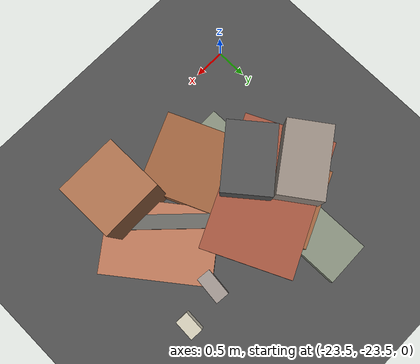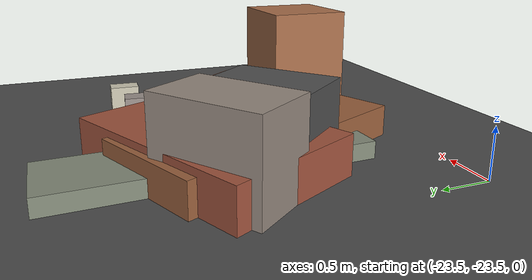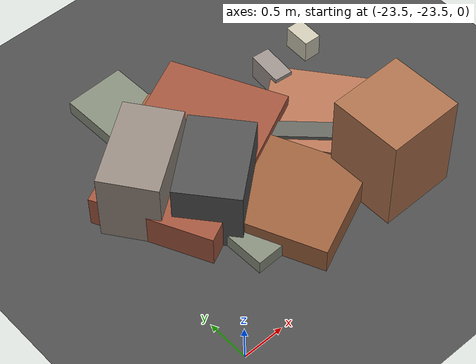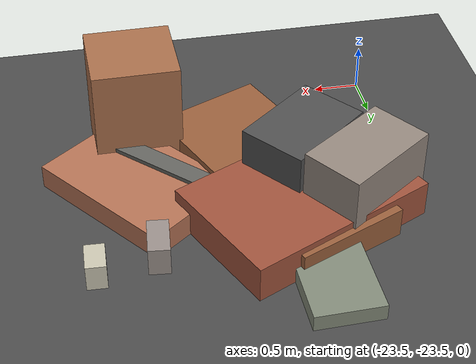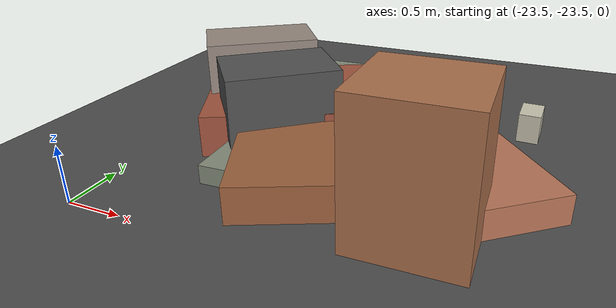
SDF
<sdf version="1.6">
 <world name="navitas_arena">
  <model name="ground_plane">
   <static>true</static>
   <link name="link">
    <collision name="collision">
     <geometry><plane><normal>0 0 1</normal><size>400 400</size></plane></geometry>
     <surface><friction><ode><mu>0.800</mu><mu2>0.800</mu2></ode></friction></surface>
    </collision>
    <visual name="visual">
     <cast_shadows>false</cast_shadows>
     <geometry><plane><normal>0 0 1</normal><size>400 400</size></plane></geometry>
     <material>
      <specular>0.04 0.04 0.04 1</specular>
      <script>
       <uri>file://media/materials/scripts/navitas_asphalt.material</uri>
       <name>Navitas/RealArenaAsphalt</name>
      </script>
     </material>
    </visual>
   </link>
  </model>
  <model name="deb_orta_30">
   <static>true</static>
   <pose>-20.227 -21.956 0.000 0 0 0</pose>
   <link name="link">
    <collision name="col_0">
     <pose>-0.601 0.953 0.156 0.000 0.000 3.044</pose>
     <geometry><box><size>0.221 0.438 0.312</size></box></geometry>
    </collision>
    <visual name="vis_0">
     <pose>-0.601 0.953 0.156 0.000 0.000 3.044</pose>
     <geometry><box><size>0.221 0.438 0.312</size></box></geometry>
     <material>
      <ambient>0.56 0.52 0.51 1</ambient>
      <diffuse>0.61 0.57 0.55 1</diffuse>
      <specular>0.05 0.05 0.045 1</specular>
     </material>
    </visual>
    <collision name="col_1">
     <pose>-0.598 -0.901 0.604 0.000 0.000 1.584</pose>
     <geometry><box><size>0.871 0.915 1.208</size></box></geometry>
    </collision>
    <visual name="vis_1">
     <pose>-0.598 -0.901 0.604 0.000 0.000 1.584</pose>
     <geometry><box><size>0.871 0.915 1.208</size></box></geometry>
     <material>
      <ambient>0.62 0.41 0.28 1</ambient>
      <diffuse>0.67 0.44 0.30 1</diffuse>
      <specular>0.05 0.05 0.045 1</specular>
     </material>
    </visual>
    <collision name="col_2">
     <pose>-1.047 0.075 0.154 0.000 0.000 2.370</pose>
     <geometry><box><size>2.217 0.217 0.308</size></box></geometry>
    </collision>
    <visual name="vis_2">
     <pose>-1.047 0.075 0.154 0.000 0.000 2.370</pose>
     <geometry><box><size>2.217 0.217 0.308</size></box></geometry>
     <material>
      <ambient>0.37 0.37 0.35 1</ambient>
      <diffuse>0.40 0.40 0.38 1</diffuse>
      <specular>0.05 0.05 0.045 1</specular>
     </material>
    </visual>
    <collision name="col_3">
     <pose>0.027 1.101 0.143 0.000 0.000 3.102</pose>
     <geometry><box><size>0.207 0.326 0.285</size></box></geometry>
    </collision>
    <visual name="vis_3">
     <pose>0.027 1.101 0.143 0.000 0.000 3.102</pose>
     <geometry><box><size>0.207 0.326 0.285</size></box></geometry>
     <material>
      <ambient>0.74 0.72 0.65 1</ambient>
      <diffuse>0.80 0.78 0.70 1</diffuse>
      <specular>0.05 0.05 0.045 1</specular>
     </material>
    </visual>
    <collision name="col_4">
     <pose>-0.514 -0.055 0.131 0.000 0.000 2.233</pose>
     <geometry><box><size>1.666 1.142 0.262</size></box></geometry>
    </collision>
    <visual name="vis_4">
     <pose>-0.514 -0.055 0.131 0.000 0.000 2.233</pose>
     <geometry><box><size>1.666 1.142 0.262</size></box></geometry>
     <material>
      <ambient>0.67 0.43 0.31 1</ambient>
      <diffuse>0.72 0.46 0.34 1</diffuse>
      <specular>0.05 0.05 0.045 1</specular>
     </material>
    </visual>
   </link>
  </model>
  <model name="deb_orta_49">
   <static>true</static>
   <pose>-22.616 -21.964 0.000 0 0 0</pose>
   <link name="link">
    <collision name="col_0">
     <pose>0.286 0.611 0.198 0.000 0.000 0.448</pose>
     <geometry><box><size>2.117 1.414 0.397</size></box></geometry>
    </collision>
    <visual name="vis_0">
     <pose>0.286 0.611 0.198 0.000 0.000 0.448</pose>
     <geometry><box><size>2.117 1.414 0.397</size></box></geometry>
     <material>
      <ambient>0.58 0.31 0.22 1</ambient>
      <diffuse>0.63 0.33 0.24 1</diffuse>
      <specular>0.05 0.05 0.045 1</specular>
     </material>
    </visual>
    <collision name="col_1">
     <pose>-0.344 0.650 0.442 0.000 0.000 0.623</pose>
     <geometry><box><size>1.091 0.676 0.883</size></box></geometry>
    </collision>
    <visual name="vis_1">
     <pose>-0.344 0.650 0.442 0.000 0.000 0.623</pose>
     <geometry><box><size>1.091 0.676 0.883</size></box></geometry>
     <material>
      <ambient>0.55 0.50 0.46 1</ambient>
      <diffuse>0.59 0.54 0.50 1</diffuse>
      <specular>0.05 0.05 0.045 1</specular>
     </material>
    </visual>
    <collision name="col_2">
     <pose>0.165 0.079 0.403 0.000 0.000 0.689</pose>
     <geometry><box><size>1.044 0.746 0.806</size></box></geometry>
    </collision>
    <visual name="vis_2">
     <pose>0.165 0.079 0.403 0.000 0.000 0.689</pose>
     <geometry><box><size>1.044 0.746 0.806</size></box></geometry>
     <material>
      <ambient>0.30 0.30 0.30 1</ambient>
      <diffuse>0.32 0.32 0.32 1</diffuse>
      <specular>0.05 0.05 0.045 1</specular>
     </material>
    </visual>
    <collision name="col_3">
     <pose>0.218 0.636 0.087 0.000 0.000 1.600</pose>
     <geometry><box><size>3.041 0.715 0.175</size></box></geometry>
    </collision>
    <visual name="vis_3">
     <pose>0.218 0.636 0.087 0.000 0.000 1.600</pose>
     <geometry><box><size>3.041 0.715 0.175</size></box></geometry>
     <material>
      <ambient>0.48 0.51 0.44 1</ambient>
      <diffuse>0.52 0.55 0.48 1</diffuse>
      <specular>0.05 0.05 0.045 1</specular>
     </material>
    </visual>
    <collision name="col_4">
     <pose>0.452 0.104 0.163 0.000 0.000 1.990</pose>
     <geometry><box><size>2.617 1.214 0.326</size></box></geometry>
    </collision>
    <visual name="vis_4">
     <pose>0.452 0.104 0.163 0.000 0.000 1.990</pose>
     <geometry><box><size>2.617 1.214 0.326</size></box></geometry>
     <material>
      <ambient>0.57 0.36 0.22 1</ambient>
      <diffuse>0.61 0.38 0.24 1</diffuse>
      <specular>0.05 0.05 0.045 1</specular>
     </material>
    </visual>
   </link>
  </model>
 </world>
</sdf>
